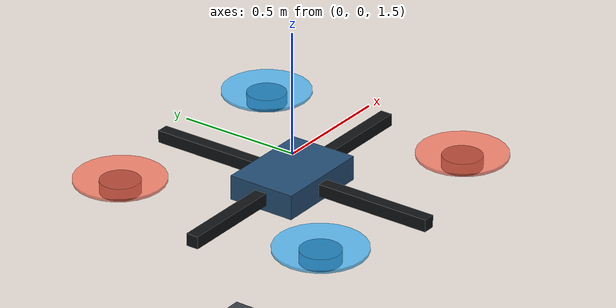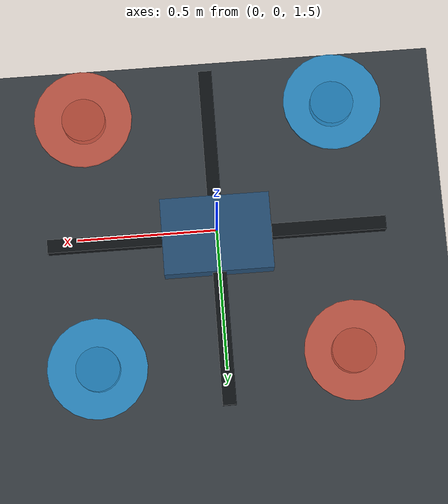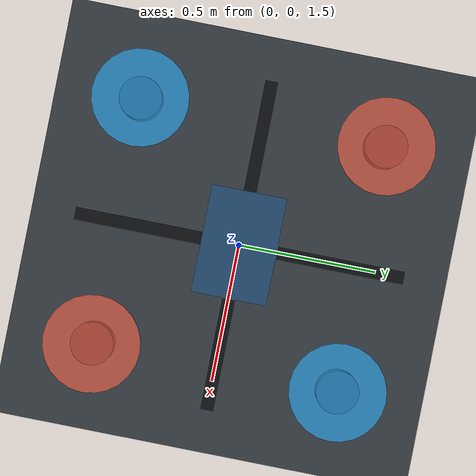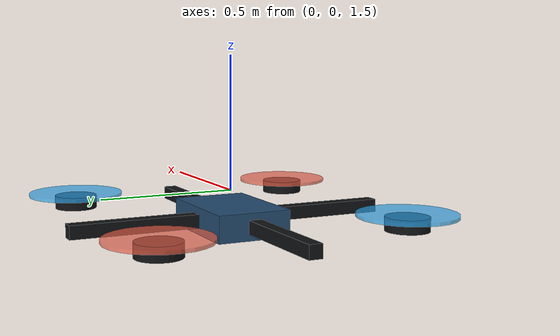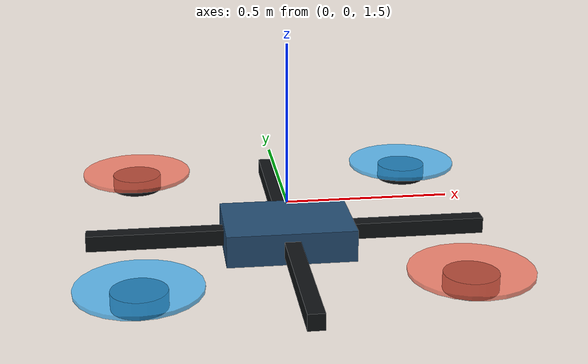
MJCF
<mujoco model="face_gesture_drone">
  <compiler angle="radian"/>
  <option timestep="0.005" gravity="0 0 -9.81"/>

  <visual>
    <global azimuth="135" elevation="-25"/>
    <rgba haze="0.15 0.18 0.22 1"/>
  </visual>

  <asset>
    <texture name="grid" type="2d" builtin="checker" rgb1="0.18 0.20 0.22" rgb2="0.25 0.28 0.30" width="512" height="512"/>
    <material name="grid" texture="grid" texrepeat="6 6" reflectance="0.2"/>
    <material name="body" rgba="0.14 0.30 0.45 1"/>
    <material name="arm" rgba="0.06 0.07 0.08 1"/>
    <material name="prop_a" rgba="0.20 0.70 1.00 0.72"/>
    <material name="prop_b" rgba="1.00 0.42 0.32 0.72"/>
  </asset>

  <worldbody>
    <light name="sun" pos="0 -3 5" dir="0 1 -1" diffuse="0.9 0.9 0.9"/>
    <geom name="floor" type="plane" size="12 12 0.1" material="grid"/>

    <body name="drone" pos="0 0 1.4">
      <freejoint name="root"/>
      <geom name="body" type="box" size="0.20 0.14 0.05" mass="0.9" material="body"/>
      <geom name="arm_x" type="box" size="0.62 0.025 0.025" mass="0.12" material="arm"/>
      <geom name="arm_y" type="box" size="0.025 0.62 0.025" mass="0.12" material="arm"/>

      <body name="front_left_motor" pos="0.46 0.46 0.02">
        <geom type="cylinder" size="0.08 0.025" mass="0.05" material="arm"/>
        <geom type="cylinder" size="0.18 0.006" pos="0 0 0.03" mass="0.01" material="prop_a"/>
      </body>
      <body name="front_right_motor" pos="0.46 -0.46 0.02">
        <geom type="cylinder" size="0.08 0.025" mass="0.05" material="arm"/>
        <geom type="cylinder" size="0.18 0.006" pos="0 0 0.03" mass="0.01" material="prop_b"/>
      </body>
      <body name="rear_left_motor" pos="-0.46 0.46 0.02">
        <geom type="cylinder" size="0.08 0.025" mass="0.05" material="arm"/>
        <geom type="cylinder" size="0.18 0.006" pos="0 0 0.03" mass="0.01" material="prop_b"/>
      </body>
      <body name="rear_right_motor" pos="-0.46 -0.46 0.02">
        <geom type="cylinder" size="0.08 0.025" mass="0.05" material="arm"/>
        <geom type="cylinder" size="0.18 0.006" pos="0 0 0.03" mass="0.01" material="prop_a"/>
      </body>
    </body>
  </worldbody>

  <keyframe>
    <key name="hover" qpos="0 0 1.4 1 0 0 0"/>
  </keyframe>
</mujoco>
